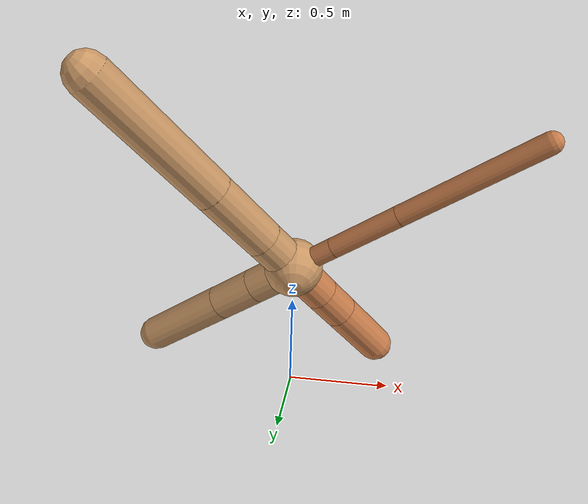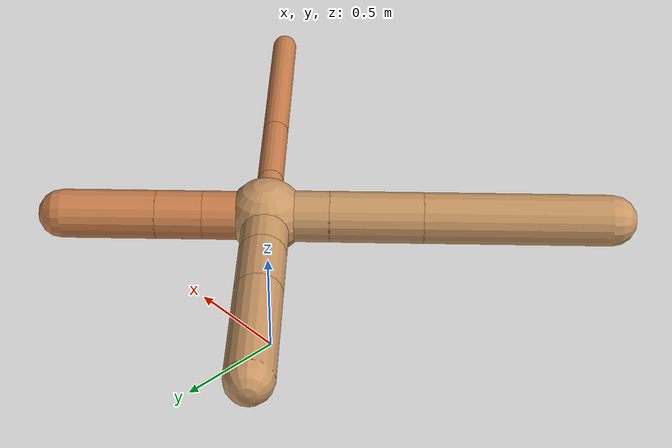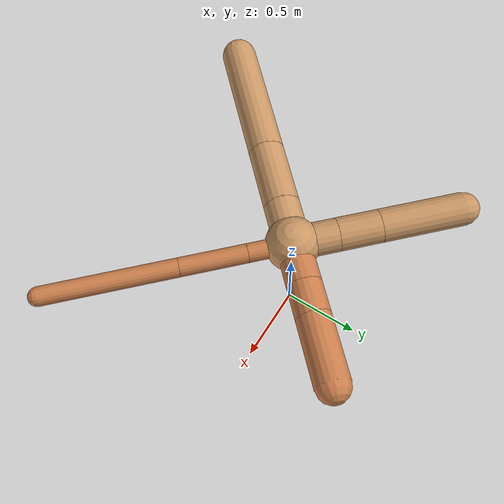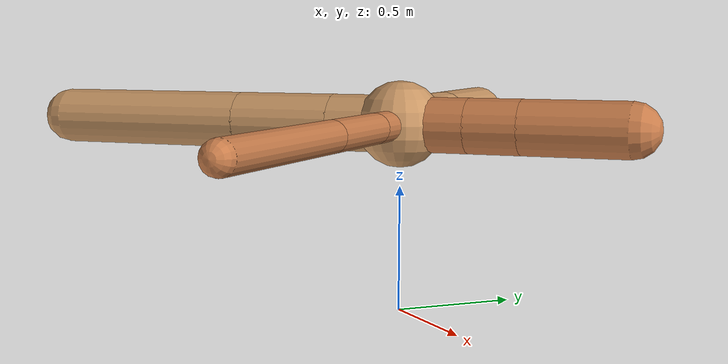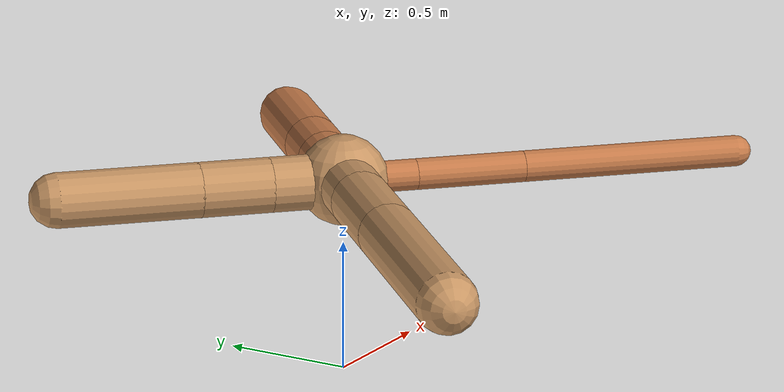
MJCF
<?xml version="1.0" ?>
<mujoco model="ant">

	<compiler angle="degree" coordinate="local" inertiafromgeom="true"/>

	<option integrator="RK4" timestep="0.01"/>

	<custom>

		<numeric data="0.0 0.0 0.55 1.0 0.0 0.0 0.0 0.0 1.0 0.0 -1.0 0.0 -1.0 0.0 1.0" name="init_qpos"/>

	</custom>

	<default>

		<joint armature="1" damping="1" limited="true"/>

		<geom conaffinity="0" condim="3" density="5.0" friction="1.5 0.1 0.1" margin="0.01" rgba="0.8 0.6 0.4 1"/>

	</default>

	<worldbody>

		<body name="torso" pos="0 0 0.75">

			<geom name="torso_geom" pos="0 0 0" size="0.1729591718359528" type="sphere"/>

			<!--joint armature="0" damping="0" limited="false" margin="0.01" name="root" pos="0 0 0" type="free"/-->

			<body name="front_left_leg" pos="0 0 0">

				<geom fromto="0 0 0 0.2 0.2 0" name="aux_1_geom" size="0.10994099623141244" type="capsule" rgba=".8 .5 .3 1"/>

				<body name="aux_1" pos="0.2 0.2 0">

					<joint axis="0 0 1" name="hip_1" pos="0.0 0.0 0.0" range="-40 40" type="hinge"/>

					<geom fromto="0 0 0 0.14882561600900393 0.14882561600900393 0" name="left_leg_geom" size="0.10994099623141244" type="capsule" rgba=".8 .5 .3 1"/>

					<body pos="0.14882561600900393 0.14882561600900393 0" name="front_left_foot">

						<joint axis="-1 1 0" name="ankle_1" pos="0.0 0.0 0.0" range="30 100" type="hinge"/>

						<geom fromto="0 0 0 0.29765123201800786 0.29765123201800786 0" name="left_ankle_geom" size="0.10994099623141244" type="capsule" rgba=".8 .5 .3 1"/>

					</body>

				</body>

			</body>

			<body name="front_right_leg" pos="0 0 0">

				<geom fromto="0 0 0 -0.2 0.2 0" name="aux_2_geom" size="0.10606331023982044" type="capsule"/>

				<body name="aux_2" pos="-0.2 0.2 0">

					<joint axis="0 0 1" name="hip_2" pos="0.0 0.0 0.0" range="-40 40" type="hinge"/>

					<geom fromto="0 0 0 -0.19244553029294365 0.19244553029294365 0" name="right_leg_geom" size="0.10606331023982044" type="capsule"/>

					<body pos="-0.19244553029294365 0.19244553029294365 0" name="front_right_foot">

						<joint axis="1 1 0" name="ankle_2" pos="0.0 0.0 0.0" range="-100 -30" type="hinge"/>

						<geom fromto="0 0 0 -0.3848910605858873 0.3848910605858873 0" name="right_ankle_geom" size="0.10606331023982044" type="capsule"/>

					</body>

				</body>

			</body>

			<body name="left_back_leg" pos="0 0 0">

				<geom fromto="0 0 0 -0.2 -0.2 0" name="aux_3_geom" size="0.11550256041831088" type="capsule"/>

				<body name="aux_3" pos="-0.2 -0.2 0">

					<joint axis="0 0 1" name="hip_3" pos="0.0 0.0 0.0" range="-40 40" type="hinge"/>

					<geom fromto="0 0 0 -0.29621264125713315 -0.29621264125713315 0" name="back_leg_geom" size="0.11550256041831088" type="capsule"/>

					<body pos="-0.29621264125713315 -0.29621264125713315 0" name="left_back_foot">

						<joint axis="-1 1 0" name="ankle_3" pos="0.0 0.0 0.0" range="-100 -30" type="hinge"/>

						<geom fromto="0 0 0 -0.5924252825142663 -0.5924252825142663 0" name="third_ankle_geom" size="0.11550256041831088" type="capsule"/>

					</body>

				</body>

			</body>

			<body name="right_back_leg" pos="0 0 0">

				<geom fromto="0 0 0 0.2 -0.2 0" name="aux_4_geom" size="0.06010498354135246" type="capsule" rgba=".8 .5 .3 1"/>

				<body name="aux_4" pos="0.2 -0.2 0">

					<joint axis="0 0 1" name="hip_4" pos="0.0 0.0 0.0" range="-40 40" type="hinge"/>

					<geom fromto="0 0 0 0.298938503650332 -0.298938503650332 0" name="rightback_leg_geom" size="0.06010498354135246" type="capsule" rgba=".8 .5 .3 1"/>

					<body pos="0.298938503650332 -0.298938503650332 0" name="right_back_foot">

						<joint axis="1 1 0" name="ankle_4" pos="0.0 0.0 0.0" range="30 100" type="hinge"/>

						<geom fromto="0 0 0 0.597877007300664 -0.597877007300664 0" name="fourth_ankle_geom" size="0.06010498354135246" type="capsule" rgba=".8 .5 .3 1"/>

					</body>

				</body>

			</body>

		</body>

	</worldbody>

	<actuator>

		<motor ctrllimited="true" ctrlrange="-1.0 1.0" joint="hip_4" gear="150"/>

		<motor ctrllimited="true" ctrlrange="-1.0 1.0" joint="ankle_4" gear="150"/>

		<motor ctrllimited="true" ctrlrange="-1.0 1.0" joint="hip_1" gear="150"/>

		<motor ctrllimited="true" ctrlrange="-1.0 1.0" joint="ankle_1" gear="150"/>

		<motor ctrllimited="true" ctrlrange="-1.0 1.0" joint="hip_2" gear="150"/>

		<motor ctrllimited="true" ctrlrange="-1.0 1.0" joint="ankle_2" gear="150"/>

		<motor ctrllimited="true" ctrlrange="-1.0 1.0" joint="hip_3" gear="150"/>

		<motor ctrllimited="true" ctrlrange="-1.0 1.0" joint="ankle_3" gear="150"/>

	</actuator>

</mujoco>
